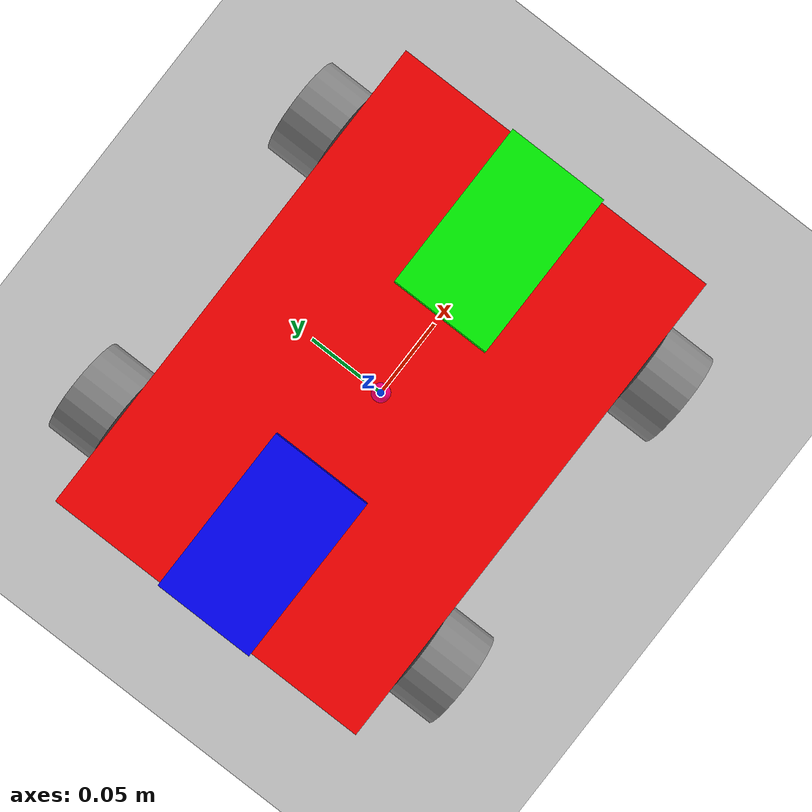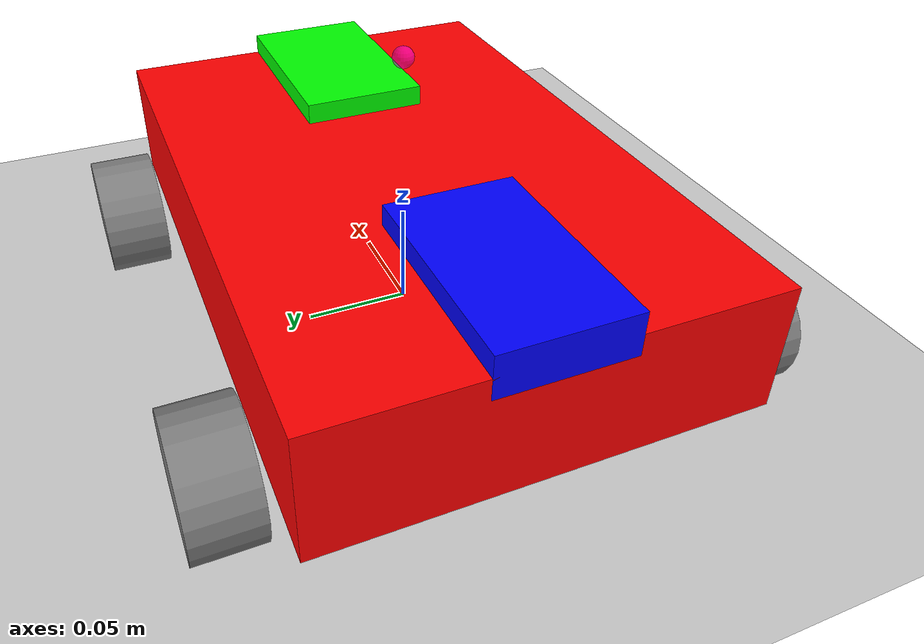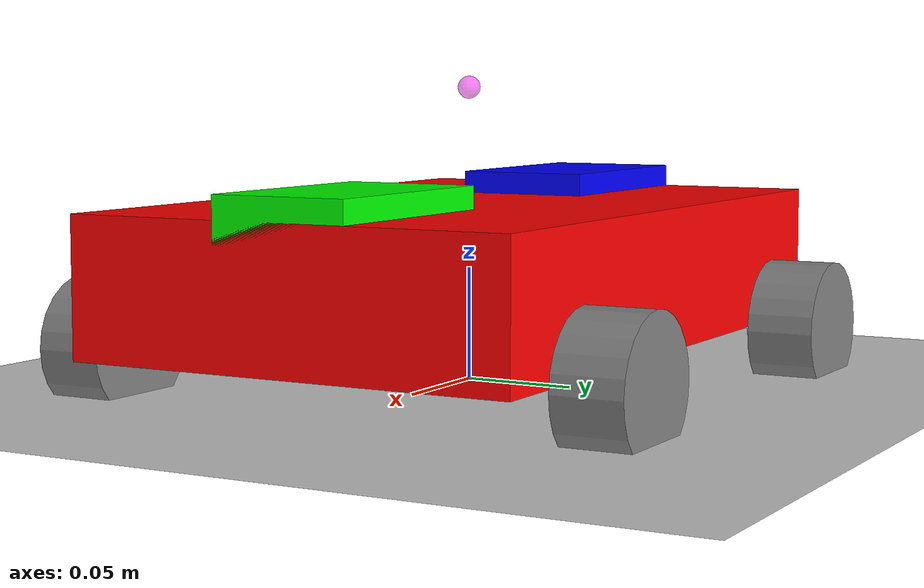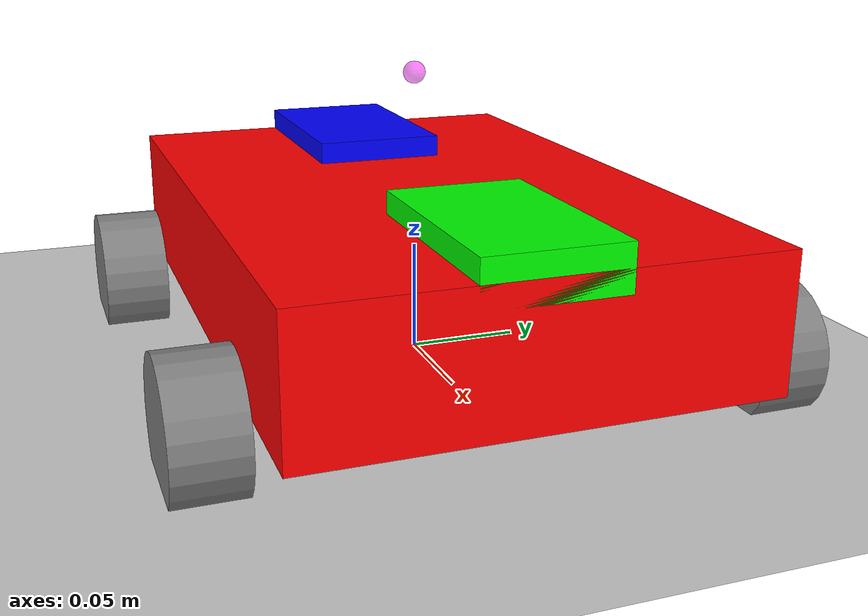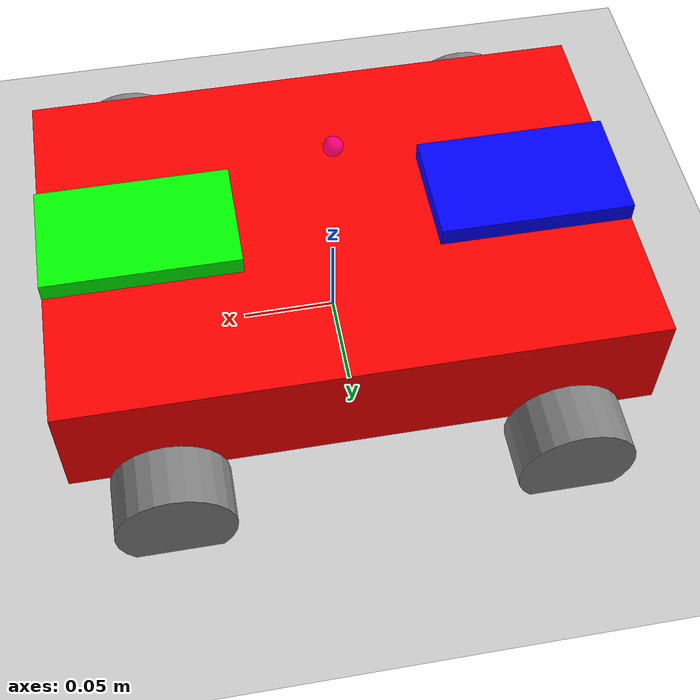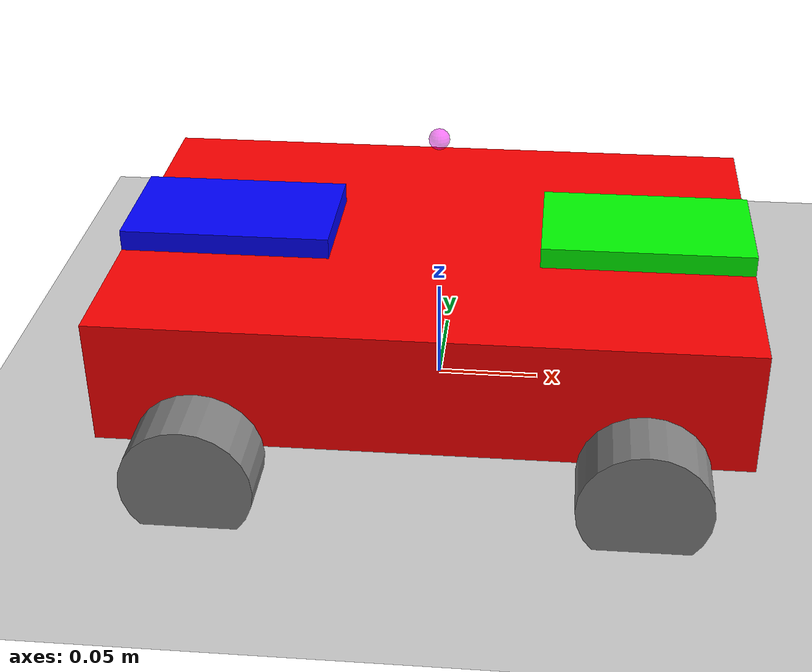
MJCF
<mujoco model="base_scene">
    <compiler angle="degree" coordinate="local"/>
    <option gravity="0 0 -9.81" integrator="RK4" timestep="0.001"/>

    <include file="car/vehicle_model.xml"/>  <!-- ✅ 추가! -->

    <asset>
        <!-- bump mesh가 여기에 추가됨 -->
    </asset>

    <worldbody>
        <geom name="ground" type="plane" size="10 10 0.1" rgba="0.5 0.5 0.5 1"/>

        <!-- ✅ 차량 위치 추가 -->
        <body name="vehicle" pos="0 0 0" >
        </body>
    </worldbody>
</mujoco>

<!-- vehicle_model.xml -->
<mujoco model="car">
  <compiler inertiafromgeom="true"/>
  <option timestep="0.002" gravity="0 0 -9.81"/>

  <asset>
    <texture name="grid" type="2d" builtin="checker"
             rgb1="0.2 0.3 0.4" rgb2="0.8 0.8 0.8"
             width="512" height="512"/>
    <material name="grid_mat" texture="grid" texrepeat="5 5"
              specular="0.3" shininess="0.3"/>
    <texture name="wheel_pattern" type="2d" builtin="checker"
             rgb1="1 1 1" rgb2="0 0 0"
             width="64" height="64"/>
    <material name="wheel_mat" texture="wheel_pattern" texrepeat="8 1"
              specular="0.5" shininess="0.5"/>
  </asset>

  <worldbody>
    <geom name="floor" type="plane" size="50 50 0.1"
          rgba="0.8 0.8 0.8 1" material="grid_mat"
          friction="0.8 0.005 0.0001"/>

    <body name="chassis" pos="0 0 0.05">
      <joint name="x"   type="slide" axis="1 0 0" damping="0.1"/>
      <joint name="y"   type="slide" axis="0 1 0" damping="0.1"/>
      <joint name="rot" type="hinge" axis="0 0 1" damping="0.1"/>

      <geom name="chassis" type="box" size="0.15 0.1 0.03"
            rgba="1 0 0 1" mass="100.0"/>
      <geom name="front" type="box" size="0.05 0.03 0.01"
            pos="0.1 0 0.03" rgba="0 1 0 1"/>
      <geom name="rear"  type="box" size="0.05 0.03 0.01"
            pos="-0.1 0 0.03" rgba="0 0 1 1"/>

      <!-- ✅ 운전석 센서 부착 위치 (site) -->
      <site name="driver_seat" pos="0 0 0.08" size="0.005"
            rgba="1 0 1 0.5"/>

      <!-- 앞왼쪽 바퀴 -->
      <body name="fl_susp" pos="0.1 0.12 0.0">
        <inertial pos="0 0 0" mass="1" diaginertia="0.001 0.001 0.001"/>
        <joint name="fl_suspension" type="slide" axis="0 0 1" damping="2"/>

        <body name="front_left_wheel" pos="0 0 -0.03">
          <joint name="fl_steer" type="hinge" axis="0 0 1" range="-0.6 0.6" damping="0.05"/>
          <joint name="fl_wheel" type="hinge" axis="0 1 0" damping="0.01"/>
          <geom name="fl_geom" type="cylinder" size="0.03 0.015"
                euler="90 0 0" material="wheel_mat"
                mass="0.1" friction="0.8 0.005 0.0001"/>
        </body>
      </body>

      <!-- 앞오른쪽 바퀴 -->
      <body name="fr_susp" pos="0.1 -0.12 0.0">
        <inertial pos="0 0 0" mass="1" diaginertia="0.001 0.001 0.001"/>
        <joint name="fr_suspension" type="slide" axis="0 0 1" damping="2"/>

        <body name="front_right_wheel" pos="0 0 -0.03">
          <joint name="fr_steer" type="hinge" axis="0 0 1" range="-0.6 0.6" damping="0.05"/>
          <joint name="fr_wheel" type="hinge" axis="0 1 0" damping="0.01"/>
          <geom name="fr_geom" type="cylinder" size="0.03 0.015"
                euler="90 0 0" material="wheel_mat"
                mass="0.1" friction="0.8 0.005 0.0001"/>
        </body>
      </body>

      <!-- 뒤왼쪽 바퀴 -->
      <body name="rl_susp" pos="-0.1 0.12 0.0">
        <inertial pos="0 0 0" mass="1" diaginertia="0.001 0.001 0.001"/>
        <joint name="rl_suspension" type="slide" axis="0 0 1" damping="2"/>

        <body name="rear_left_wheel" pos="0 0 -0.03">
          <joint name="rl_wheel" type="hinge" axis="0 1 0" damping="0.01"/>
          <geom name="rl_geom" type="cylinder" size="0.03 0.015"
                euler="90 0 0" material="wheel_mat"
                mass="0.1" friction="0.8 0.005 0.0001"/>
        </body>
      </body>

      <!-- 뒤오른쪽 바퀴 -->
    <body name="rr_susp" pos="-0.1 -0.12 0.0">
      <inertial pos="0 0 0" mass="1" diaginertia="0.001 0.001 0.001"/>
      <joint name="rr_suspension" type="slide" axis="0 0 1" damping="2"/>

      <body name="rear_right_wheel" pos="0 0 -0.03">
        <joint name="rr_wheel" type="hinge" axis="0 1 0" damping="0.01"/>
        <geom name="rr_geom" type="cylinder" size="0.03 0.015"
              euler="90 0 0" material="wheel_mat"
              mass="0.1" friction="0.8 0.005 0.0001"/>
      </body>
    </body>

    </body>
  </worldbody>

  <sensor>
    <!-- ✅ 운전석 기준 vertical 가속도 -->
    <accelerometer name="accel_z" site="driver_seat"/>
    <!-- ✅ pitch 확인용 자이로 (z축은 yaw, pitch는 x축 기준) -->
    <gyro name="gyro_pitch" site="driver_seat"/>
  </sensor>

  <actuator>
    <motor name="fl_motor" joint="fl_wheel" ctrlrange="-10 10" gear="0.1"/>
    <motor name="fr_motor" joint="fr_wheel" ctrlrange="-10 10" gear="0.1"/>
    <motor name="rl_motor" joint="rl_wheel" ctrlrange="-10 10" gear="0.1"/>
    <motor name="rr_motor" joint="rr_wheel" ctrlrange="-10 10" gear="0.1"/>

    <motor name="fl_steer" joint="fl_steer" ctrlrange="-0.6 0.6" gear="1"/>
    <motor name="fr_steer" joint="fr_steer" ctrlrange="-0.6 0.6" gear="1"/>

    <general name="fl_spring" joint="fl_suspension" gainprm="0 0 0" biasprm="0 1000 10"/>
    <general name="fr_spring" joint="fr_suspension" gainprm="0 0 0" biasprm="0 1000 10"/>
    <general name="rl_spring" joint="rl_suspension" gainprm="0 0 0" biasprm="0 1000 10"/>
    <general name="rr_spring" joint="rr_suspension" gainprm="0 0 0" biasprm="0 1000 10"/>

  </actuator>
</mujoco>
